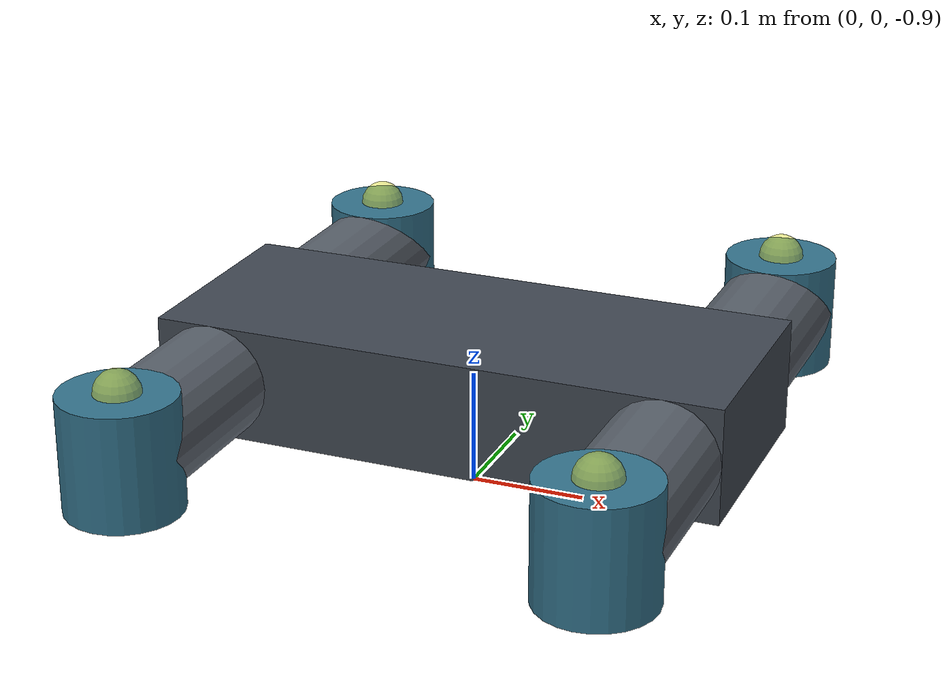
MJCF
<mujoco model="rov_h4_underwater">

  <!-- compiler：角度单位、欧拉顺序、关节限位自动推断 -->
  <compiler angle="radian" eulerseq="xyz" autolimits="true"/>

  <!-- option：仿真步长、重力、流体密度/黏度、积分器、接触锥、全局风速（可代码里改） -->
  <option timestep="0.002" gravity="0 0 -9.81"
          density="1000"
          viscosity="0.001"
          integrator="implicitfast"
          cone="elliptic"
          wind="0 0 0"/>

  <!-- visual：视口光照与相机默认方位（仅显示，不影响动力学） -->
  <visual>
    <headlight diffuse="0.6 0.7 0.8" ambient="0.3 0.35 0.4"/>
    <global azimuth="140" elevation="-20"/>
  </visual>

  <!-- default：geom/joint/site/motor 的类默认属性，子元素未写明的从这里继承 -->
  <default>
    <geom type="cylinder" condim="3" friction="0.6 0.05 0.001" contype="1" conaffinity="1"
          density="1000" fluidshape="ellipsoid"/>
    <joint type="hinge" axis="0 1 0" damping="0.08" armature="0.002"/>
    <site size="0.015" rgba="0.9 0.9 0.2 0.5"/>
    <motor ctrllimited="true" ctrlrange="-1 1" forcelimited="true" forcerange="-30 30"/>
  </default>

  <!-- asset：纹理与材质（水面、地面棋盘格、机身/臂/推进器配色） -->
  <asset>
    <texture name="water_tex" type="2d" builtin="flat" rgb1="0.15 0.35 0.55" rgb2="0.1 0.25 0.4" width="1" height="1"/>
    <material name="water_mat" texture="water_tex" reflectance="0.1" texuniform="true"/>
    <texture name="floor_tex" type="2d" builtin="checker" rgb1="0.12 0.14 0.16" rgb2="0.18 0.2 0.22" width="256" height="256"/>
    <material name="floor_mat" texture="floor_tex" texrepeat="8 8" texuniform="true" reflectance="0.2"/>
    <material name="hull" rgba="0.25 0.28 0.32 1"/>
    <material name="arm" rgba="0.35 0.38 0.42 1"/>
    <material name="thruster" rgba="0.2 0.45 0.55 1"/>
  </asset>

  <!-- worldbody：世界坐标系下的静态场景 + ROV 根体 -->
  <worldbody>
    <!-- 定向光 -->
    <light pos="1 1 2" dir="-1 -1 -2" diffuse="1 1 1"/>
    <!-- 水底参考平面（z=-3） -->
    <geom name="floor" type="plane" size="5 5 0.01" material="floor_mat" pos="0 0 -3"/>
    <!-- 水面示意（z=0），无碰撞；ROV 在水下初始化 -->
    <geom name="water_surface" type="plane" size="6 6 0.01" material="water_mat" pos="0 0 0"
          contype="0" conaffinity="0" rgba="0.2 0.5 0.7 0.25"/>

    <!-- rov：整机浮动基；gravcomp 模拟中性浮力（抵消重力） -->
    <body name="rov" pos="0 0 -0.8" gravcomp="1">
      <!-- 6 自由度自由关节：基体位姿 -->
      <freejoint name="rov_free"/>
      <!-- 惯性由子 geom 密度自动合成；总排水体积约 1.585e-2 m^3 => 中性浮力质量约 15.85 kg -->
      <!-- imu：姿态/加速度/角速度传感器挂载点（机体原点） -->
      <site name="imu" type="sphere" pos="0 0 0" size="0.012" rgba="1 0.8 0 0.9"/>
      <!-- pressure_port：深度/静压推算用参考点（机身下方） -->
      <site name="pressure_port" pos="0 0 -0.05" type="sphere" size="0.008" rgba="0 1 0.5 0.7"/>

      <!-- 机身（H 形横梁）：50×20×10 cm 长方体 -->
      <geom name="hull" type="box" size="0.25 0.1 0.05" material="hull" density="1000" fluidshape="ellipsoid"/>

      <!-- 四臂：圆柱沿 ±y，直径 10 cm，臂长 15 cm，左右对称布置在 x=±0.2 -->
      <!-- 后左臂：x=-0.2，y 从机身到 +y 外伸 -->
      <geom name="arm_nx_py" material="arm" fromto="-0.2 0.01 0 -0.2 0.25 0" size="0.05" density="1000" fluidshape="ellipsoid"/>
      <!-- 后右臂：x=-0.2，y 从机身到 -y 外伸 -->
      <geom name="arm_nx_ny" material="arm" fromto="-0.2 -0.1 0 -0.2 -0.25 0" size="0.05" density="1000" fluidshape="ellipsoid"/>
      <!-- 前左臂：x=+0.2，y 从机身到 +y 外伸 -->
      <geom name="arm_px_py" material="arm" fromto="0.2 0.1 0 0.2 0.25 0" size="0.05" density="1000" fluidshape="ellipsoid"/>
      <!-- 前右臂：x=+0.2，y 从机身到 -y 外伸 -->
      <geom name="arm_px_ny" material="arm" fromto="0.2 -0.1 0 0.2 -0.25 0" size="0.05" density="1000" fluidshape="ellipsoid"/>

      <!-- ========== 四推进器子体：每臂末端一个矢量舱，绕局部 y 铰链；局部 +z 为推力轴 ========== -->
      <!-- 后左外推进器：x=-0.2, y=+0.25 -->
      <body name="thr_nx_py" pos="-0.2 0.25 0" gravcomp="1">
        <joint name="thr_nx_py_yaw" limited="true" range="-3.1415926 3.1415926"/>
        <geom name="geom_thr_nx_py" type="cylinder" size="0.05 0.05" zaxis="0 0 1" material="thruster" density="1000" fluidshape="ellipsoid" contype="0" conaffinity="0"/>
        <site name="site_thr_nx_py" pos="0 0 0.05" zaxis="0 0 1" size="0.02"/>
      </body>
      <!-- 后右外推进器：x=-0.2, y=-0.25 -->
      <body name="thr_nx_ny" pos="-0.2 -0.25 0" gravcomp="1">
        <joint name="thr_nx_ny_yaw" limited="true" range="-3.1415926 3.1415926"/>
        <geom name="geom_thr_nx_ny" type="cylinder" size="0.05 0.05" zaxis="0 0 1" material="thruster" density="1000" fluidshape="ellipsoid" contype="0" conaffinity="0"/>
        <site name="site_thr_nx_ny" pos="0 0 0.05" zaxis="0 0 1" size="0.02"/>
      </body>
      <!-- 前左外推进器：x=+0.2, y=+0.25 -->
      <body name="thr_px_py" pos="0.2 0.25 0" gravcomp="1">
        <joint name="thr_px_py_yaw" limited="true" range="-3.1415926 3.1415926"/>
        <geom name="geom_thr_px_py" type="cylinder" size="0.05 0.05" zaxis="0 0 1" material="thruster" density="1000" fluidshape="ellipsoid" contype="0" conaffinity="0"/>
        <site name="site_thr_px_py" pos="0 0 0.05" zaxis="0 0 1" size="0.02"/>
      </body>
      <!-- 前右外推进器：x=+0.2, y=-0.25 -->
      <body name="thr_px_ny" pos="0.2 -0.25 0" gravcomp="1">
        <joint name="thr_px_ny_yaw" limited="true" range="-3.1415926 3.1415926"/>
        <geom name="geom_thr_px_ny" type="cylinder" size="0.05 0.05" zaxis="0 0 1" material="thruster" density="1000" fluidshape="ellipsoid" contype="0" conaffinity="0"/>
        <site name="site_thr_px_ny" pos="0 0 0.05" zaxis="0 0 1" size="0.02"/>
      </body>
    </body>
  </worldbody>

  <!-- actuator：控制通道定义；前 4 路偏航伺服，后 4 路推力电机 -->
  <actuator>
    <!-- position：ctrl[0:4]，各推进器绕 y 轴目标角 [rad]；采用保守增益确保数值稳定 -->
    <position name="yaw_nx_py" joint="thr_nx_py_yaw" kp="80" kv="6"
              ctrlrange="-3.1415926 3.1415926"/>
    <position name="yaw_nx_ny" joint="thr_nx_ny_yaw" kp="80" kv="6"
              ctrlrange="-3.1415926 3.1415926"/>
    <position name="yaw_px_py" joint="thr_px_py_yaw" kp="80" kv="6"
              ctrlrange="-3.1415926 3.1415926"/>
    <position name="yaw_px_ny" joint="thr_px_ny_yaw" kp="80" kv="6"
              ctrlrange="-3.1415926 3.1415926"/>
    <!-- motor：ctrl[4:8]，推力作用在对应 site 局部 +z -->
    <motor name="thrust_nx_py" site="site_thr_nx_py" gear="0 0 25 0 0 0"/>
    <motor name="thrust_nx_ny" site="site_thr_nx_ny" gear="0 0 25 0 0 0"/>
    <motor name="thrust_px_py" site="site_thr_px_py" gear="0 0 25 0 0 0"/>
    <motor name="thrust_px_ny" site="site_thr_px_ny" gear="0 0 25 0 0 0"/>
  </actuator>

  <!-- sensor：仿真可读传感器，供观测/控制栈使用 -->
  <sensor>
    <!-- IMU：线加速度、角速度、磁强（地磁需外部注入时才有物理意义） -->
    <accelerometer name="imu_accel" site="imu"/>
    <gyro name="imu_gyro" site="imu"/>
    <magnetometer name="imu_mag" site="imu"/>
    <!-- 机体姿态四元数（相对世界） -->
    <framequat name="imu_quat" objtype="body" objname="rov"/>
    <!-- 机体线速度/角速度（世界系），补全 RL 常用状态 -->
    <framelinvel name="imu_linvel_world" objtype="site" objname="imu"/>
    <frameangvel name="imu_angvel_world" objtype="site" objname="imu"/>
    <!-- 世界坐标位置：imu 与压力口，用于深度/静压换算（水面 z=0 时 depth≈-pos_z） -->
    <framepos name="imu_pos_world" objtype="site" objname="imu"/>
    <framepos name="pressure_port_pos" objtype="site" objname="pressure_port"/>
    <!-- 各推进器矢量角 [rad]，用于推力分配与观测 -->
    <jointpos name="thr_nx_py_angle" joint="thr_nx_py_yaw"/>
    <jointpos name="thr_nx_ny_angle" joint="thr_nx_ny_yaw"/>
    <jointpos name="thr_px_py_angle" joint="thr_px_py_yaw"/>
    <jointpos name="thr_px_ny_angle" joint="thr_px_ny_yaw"/>
    <jointvel name="thr_nx_py_rate" joint="thr_nx_py_yaw"/>
    <jointvel name="thr_nx_ny_rate" joint="thr_nx_ny_yaw"/>
    <jointvel name="thr_px_py_rate" joint="thr_px_py_yaw"/>
    <jointvel name="thr_px_ny_rate" joint="thr_px_ny_yaw"/>
  </sensor>
</mujoco>
